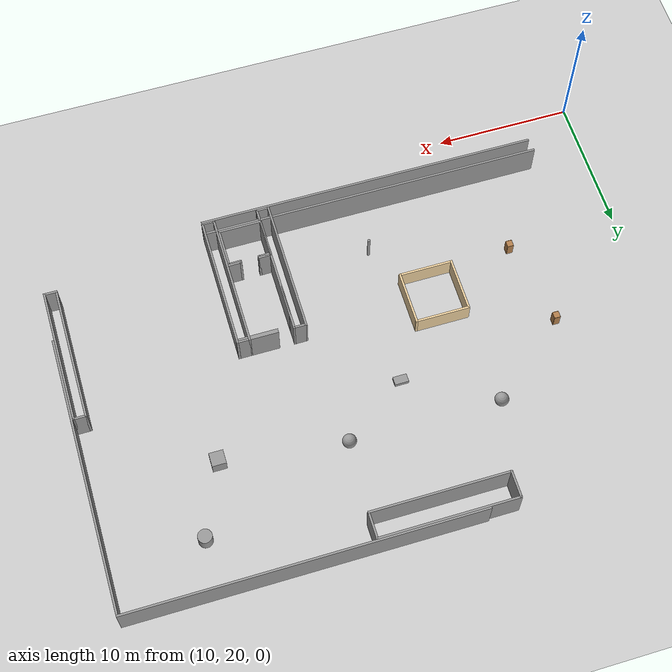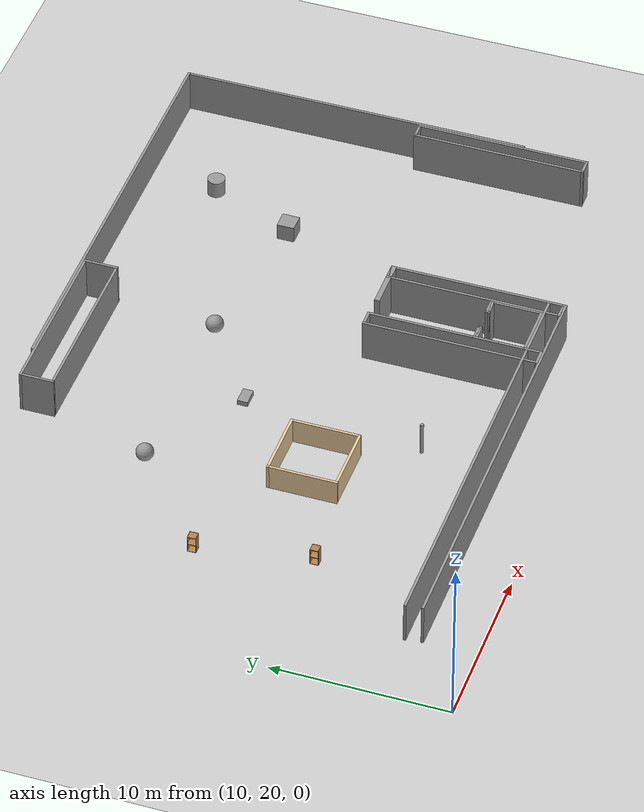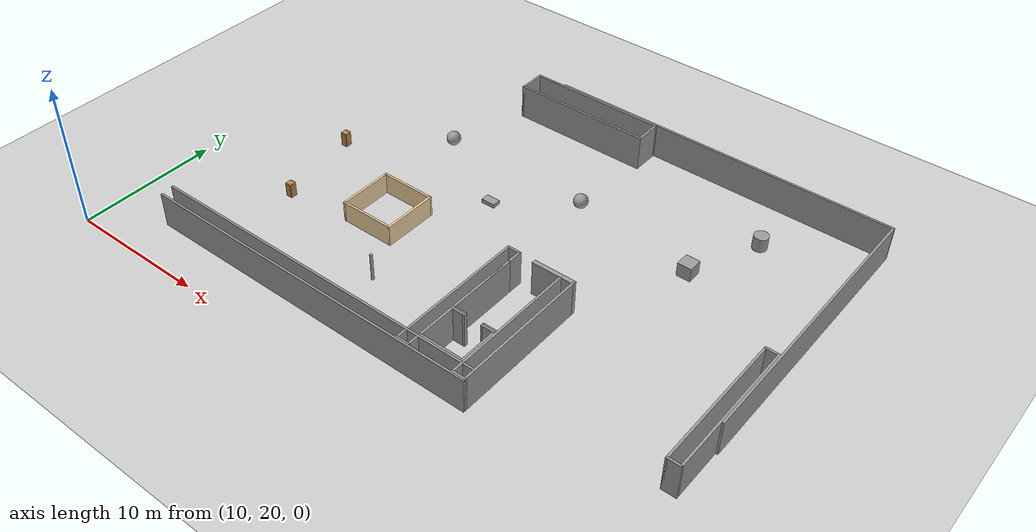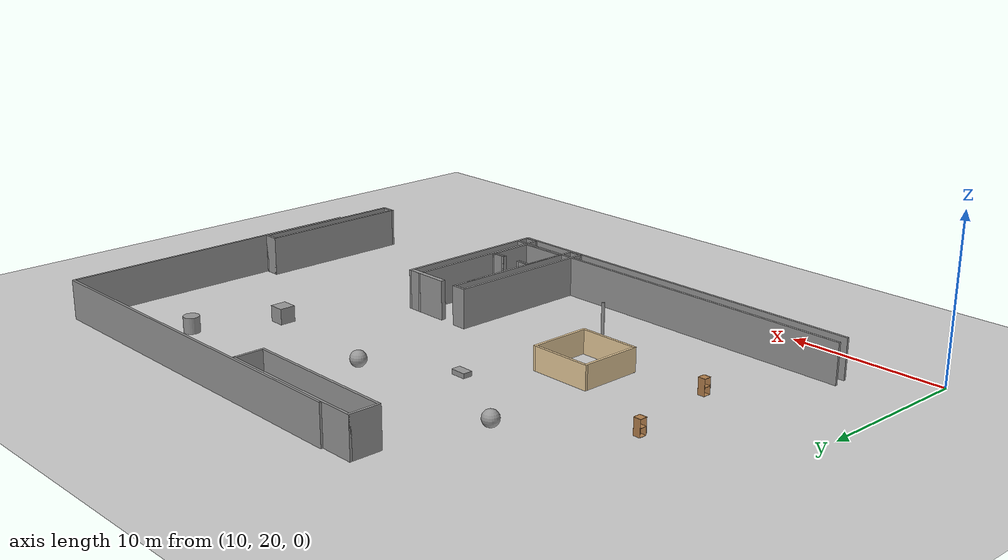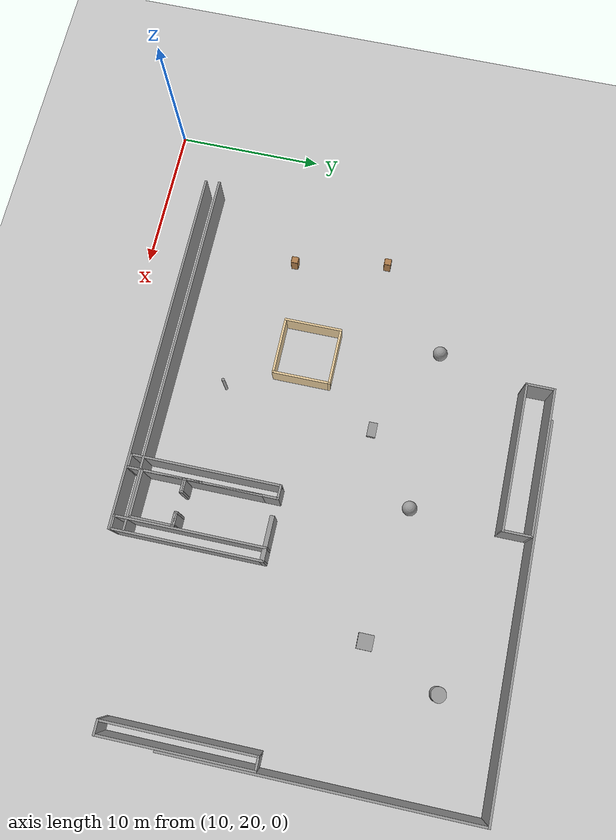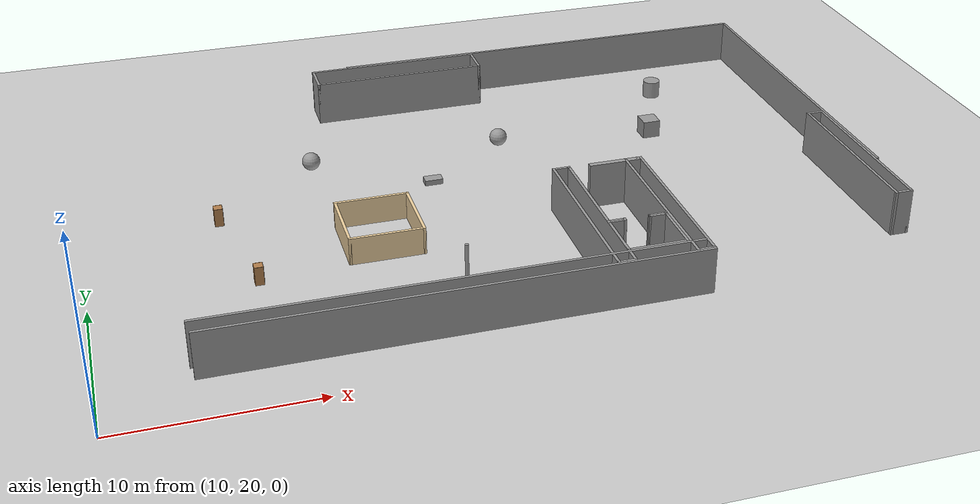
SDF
<sdf version="1.6">
 <world name="default">
  <model name="ground_plane">
   <static>1</static>
   <link name="link">
    <collision name="collision">
     <geometry><plane><normal>0 0 1</normal><size>105 105</size></plane></geometry>
     <surface>
      <contact><collide_bitmask>65535</collide_bitmask></contact>
      <friction><ode><mu>100</mu><mu2>50</mu2></ode></friction>
     </surface>
    </collision>
    <visual name="visual">
     <cast_shadows>0</cast_shadows>
     <geometry><plane><normal>0 0 1</normal><size>105 105</size></plane></geometry>
     <material>
      <script><uri>file://media/materials/scripts/gazebo.material</uri><name>Gazebo/Grey</name></script>
     </material>
    </visual>
   </link>
  </model>
  <model name="wall_25m_6">
   <pose>39.0043 49.3458 0 0 -0 0</pose>
   <link name="Wall_28">
    <collision name="Wall_28_Collision">
     <geometry><box><size>25 0.15 2.5</size></box></geometry>
     <pose>0 0 1.25 0 -0 0</pose>
    </collision>
    <visual name="Wall_28_Visual">
     <pose>0 0 1.25 0 -0 0</pose>
     <geometry><box><size>25 0.15 2.5</size></box></geometry>
     <material>
      <script><uri>file://media/materials/scripts/gazebo.material</uri><name>Gazebo/Grey</name></script>
      <ambient>1 1 1 1</ambient>
     </material>
     <meta><layer>0</layer></meta>
    </visual>
   </link>
   <static>1</static>
  </model>
  <model name="wall_v20m_6">
   <pose>51.4317 39.2751 0 0 -0 0</pose>
   <link name="Wall_35">
    <collision name="Wall_35_Collision">
     <geometry><box><size>20 0.15 2.5</size></box></geometry>
     <pose>0 0 1.25 0 -0 0</pose>
    </collision>
    <visual name="Wall_35_Visual">
     <pose>0 0 1.25 0 -0 0</pose>
     <geometry><box><size>20 0.15 2.5</size></box></geometry>
     <material>
      <script><uri>file://media/materials/scripts/gazebo.material</uri><name>Gazebo/Grey</name></script>
      <ambient>1 1 1 1</ambient>
     </material>
     <meta><layer>0</layer></meta>
    </visual>
    <pose>0 -0 0 0 -0 -1.5708</pose>
   </link>
   <static>1</static>
  </model>
  <model name="wall_25m_0">
   <pose>26.8412 23.0792 0 0 -0 0</pose>
   <link name="Wall_28">
    <collision name="Wall_28_Collision">
     <geometry><box><size>25 0.15 2.5</size></box></geometry>
     <pose>0 0 1.25 0 -0 0</pose>
    </collision>
    <visual name="Wall_28_Visual">
     <pose>0 0 1.25 0 -0 0</pose>
     <geometry><box><size>25 0.15 2.5</size></box></geometry>
     <material>
      <script><uri>file://media/materials/scripts/gazebo.material</uri><name>Gazebo/Grey</name></script>
      <ambient>1 1 1 1</ambient>
     </material>
     <meta><layer>0</layer></meta>
    </visual>
   </link>
   <static>1</static>
  </model>
  <model name="base10x1_1">
   <pose>38.8563 28.1195 0 0 -0 0</pose>
   <link name="Wall_15">
    <collision name="Wall_15_Collision">
     <geometry><box><size>10 0.15 2.5</size></box></geometry>
     <pose>0 0 1.25 0 -0 0</pose>
    </collision>
    <visual name="Wall_15_Visual">
     <pose>0 0 1.25 0 -0 0</pose>
     <geometry><box><size>10 0.15 2.5</size></box></geometry>
     <material>
      <script><uri>file://media/materials/scripts/gazebo.material</uri><name>Gazebo/Grey</name></script>
      <ambient>1 1 1 1</ambient>
     </material>
     <meta><layer>0</layer></meta>
    </visual>
    <pose>-0.425 0 0 0 -0 1.5708</pose>
   </link>
   <link name="Wall_16">
    <collision name="Wall_16_Collision">
     <geometry><box><size>1 0.15 2.5</size></box></geometry>
     <pose>0 0 1.25 0 -0 0</pose>
    </collision>
    <visual name="Wall_16_Visual">
     <pose>0 0 1.25 0 -0 0</pose>
     <geometry><box><size>1 0.15 2.5</size></box></geometry>
     <material>
      <script><uri>file://media/materials/scripts/gazebo.material</uri><name>Gazebo/Grey</name></script>
      <ambient>1 1 1 1</ambient>
     </material>
     <meta><layer>0</layer></meta>
    </visual>
    <pose>0 4.925 0 0 -0 0</pose>
   </link>
   <link name="Wall_17">
    <collision name="Wall_17_Collision">
     <geometry><box><size>10 0.15 2.5</size></box></geometry>
     <pose>0 0 1.25 0 -0 0</pose>
    </collision>
    <visual name="Wall_17_Visual">
     <pose>0 0 1.25 0 -0 0</pose>
     <geometry><box><size>10 0.15 2.5</size></box></geometry>
     <material>
      <script><uri>file://media/materials/scripts/gazebo.material</uri><name>Gazebo/Grey</name></script>
      <ambient>1 1 1 1</ambient>
     </material>
     <meta><layer>0</layer></meta>
    </visual>
    <pose>0.425 0 0 0 -0 -1.5708</pose>
   </link>
   <link name="Wall_18">
    <collision name="Wall_18_Collision">
     <geometry><box><size>1 0.15 2.5</size></box></geometry>
     <pose>0 0 1.25 0 -0 0</pose>
    </collision>
    <visual name="Wall_18_Visual">
     <pose>0 0 1.25 0 -0 0</pose>
     <geometry><box><size>1 0.15 2.5</size></box></geometry>
     <material>
      <script><uri>file://media/materials/scripts/gazebo.material</uri><name>Gazebo/Grey</name></script>
      <ambient>1 1 1 1</ambient>
     </material>
     <meta><layer>0</layer></meta>
    </visual>
    <pose>0 -4.925 0 0 -0 3.14159</pose>
   </link>
   <static>1</static>
  </model>
  <model name="wall_25m_2">
   <pose>26.7296 24.0129 0 0 -0 0</pose>
   <link name="Wall_28">
    <collision name="Wall_28_Collision">
     <geometry><box><size>25 0.15 2.5</size></box></geometry>
     <pose>0 0 1.25 0 -0 0</pose>
    </collision>
    <visual name="Wall_28_Visual">
     <pose>0 0 1.25 0 -0 0</pose>
     <geometry><box><size>25 0.15 2.5</size></box></geometry>
     <material>
      <script><uri>file://media/materials/scripts/gazebo.material</uri><name>Gazebo/Grey</name></script>
      <ambient>1 1 1 1</ambient>
     </material>
     <meta><layer>0</layer></meta>
    </visual>
   </link>
   <static>1</static>
  </model>
  <model name="box4x4x1.5">
   <pose>24.8277 32.6302 0 0 -0 0</pose>
   <link name="Wall_5">
    <collision name="Wall_5_Collision">
     <geometry><box><size>4 0.15 1.5</size></box></geometry>
     <pose>0 0 0.75 0 -0 0</pose>
    </collision>
    <visual name="Wall_5_Visual">
     <pose>0 0 0.75 0 -0 0</pose>
     <geometry><box><size>4 0.15 1.5</size></box></geometry>
     <material>
      <script><uri>file://media/materials/scripts/gazebo.material</uri><name>Gazebo/Grey</name></script>
      <ambient>0.921569 0.807843 0.615686 1</ambient>
     </material>
     <meta><layer>0</layer></meta>
    </visual>
    <pose>-1.925 -0 0 0 -0 -1.5708</pose>
   </link>
   <link name="Wall_6">
    <collision name="Wall_6_Collision">
     <geometry><box><size>4 0.15 1.5</size></box></geometry>
     <pose>0 0 0.75 0 -0 0</pose>
    </collision>
    <visual name="Wall_6_Visual">
     <pose>0 0 0.75 0 -0 0</pose>
     <geometry><box><size>4 0.15 1.5</size></box></geometry>
     <material>
      <script><uri>file://media/materials/scripts/gazebo.material</uri><name>Gazebo/Grey</name></script>
      <ambient>0.921569 0.807843 0.615686 1</ambient>
     </material>
     <meta><layer>0</layer></meta>
    </visual>
    <pose>0 -1.925 0 0 -0 0</pose>
   </link>
   <link name="Wall_7">
    <collision name="Wall_7_Collision">
     <geometry><box><size>4 0.15 1.5</size></box></geometry>
     <pose>0 0 0.75 0 -0 0</pose>
    </collision>
    <visual name="Wall_7_Visual">
     <pose>0 0 0.75 0 -0 0</pose>
     <geometry><box><size>4 0.15 1.5</size></box></geometry>
     <material>
      <script><uri>file://media/materials/scripts/gazebo.material</uri><name>Gazebo/Grey</name></script>
      <ambient>0.921569 0.807843 0.615686 1</ambient>
     </material>
     <meta><layer>0</layer></meta>
    </visual>
    <pose>1.925 -0 0 0 -0 1.5708</pose>
   </link>
   <link name="Wall_8">
    <collision name="Wall_8_Collision">
     <geometry><box><size>4 0.15 1.5</size></box></geometry>
     <pose>0 0 0.75 0 -0 0</pose>
    </collision>
    <visual name="Wall_8_Visual">
     <pose>0 0 0.75 0 -0 0</pose>
     <geometry><box><size>4 0.15 1.5</size></box></geometry>
     <material>
      <script><uri>file://media/materials/scripts/gazebo.material</uri><name>Gazebo/Grey</name></script>
      <ambient>0.921569 0.807843 0.615686 1</ambient>
     </material>
     <meta><layer>0</layer></meta>
    </visual>
    <pose>0 1.925 0 0 -0 3.14159</pose>
   </link>
   <static>1</static>
  </model>
  <model name="base2x10">
   <pose>29.3485 48.2822 0 0 -0 0</pose>
   <link name="Wall_10">
    <collision name="Wall_10_Collision">
     <geometry><box><size>2 0.15 2.5</size></box></geometry>
     <pose>0 0 1.25 0 -0 0</pose>
    </collision>
    <visual name="Wall_10_Visual">
     <pose>0 0 1.25 0 -0 0</pose>
     <geometry><box><size>2 0.15 2.5</size></box></geometry>
     <material>
      <script><uri>file://media/materials/scripts/gazebo.material</uri><name>Gazebo/Grey</name></script>
      <ambient>1 1 1 1</ambient>
     </material>
     <meta><layer>0</layer></meta>
    </visual>
    <pose>-4.925 0 0 0 -0 -1.5708</pose>
   </link>
   <link name="Wall_11">
    <collision name="Wall_11_Collision">
     <geometry><box><size>10 0.15 2.5</size></box></geometry>
     <pose>0 0 1.25 0 -0 0</pose>
    </collision>
    <visual name="Wall_11_Visual">
     <pose>0 0 1.25 0 -0 0</pose>
     <geometry><box><size>10 0.15 2.5</size></box></geometry>
     <material>
      <script><uri>file://media/materials/scripts/gazebo.material</uri><name>Gazebo/Grey</name></script>
      <ambient>1 1 1 1</ambient>
     </material>
     <meta><layer>0</layer></meta>
    </visual>
    <pose>0 -0.925 0 0 -0 0</pose>
   </link>
   <link name="Wall_12">
    <collision name="Wall_12_Collision">
     <geometry><box><size>2 0.15 2.5</size></box></geometry>
     <pose>0 0 1.25 0 -0 0</pose>
    </collision>
    <visual name="Wall_12_Visual">
     <pose>0 0 1.25 0 -0 0</pose>
     <geometry><box><size>2 0.15 2.5</size></box></geometry>
     <material>
      <script><uri>file://media/materials/scripts/gazebo.material</uri><name>Gazebo/Grey</name></script>
      <ambient>1 1 1 1</ambient>
     </material>
     <meta><layer>0</layer></meta>
    </visual>
    <pose>4.925 0 0 0 -0 1.5708</pose>
   </link>
   <link name="Wall_13">
    <collision name="Wall_13_Collision">
     <geometry><box><size>10 0.15 2.5</size></box></geometry>
     <pose>0 0 1.25 0 -0 0</pose>
    </collision>
    <visual name="Wall_13_Visual">
     <pose>0 0 1.25 0 -0 0</pose>
     <geometry><box><size>10 0.15 2.5</size></box></geometry>
     <material>
      <script><uri>file://media/materials/scripts/gazebo.material</uri><name>Gazebo/Grey</name></script>
      <ambient>1 1 1 1</ambient>
     </material>
     <meta><layer>0</layer></meta>
    </visual>
    <pose>0 0.925 0 0 -0 3.14159</pose>
   </link>
   <static>1</static>
  </model>
  <model name="base10x1_3">
   <pose>50.8665 30.488 0 0 -0 0</pose>
   <link name="Wall_15">
    <collision name="Wall_15_Collision">
     <geometry><box><size>10 0.15 2.5</size></box></geometry>
     <pose>0 0 1.25 0 -0 0</pose>
    </collision>
    <visual name="Wall_15_Visual">
     <pose>0 0 1.25 0 -0 0</pose>
     <geometry><box><size>10 0.15 2.5</size></box></geometry>
     <material>
      <script><uri>file://media/materials/scripts/gazebo.material</uri><name>Gazebo/Grey</name></script>
      <ambient>1 1 1 1</ambient>
     </material>
     <meta><layer>0</layer></meta>
    </visual>
    <pose>-0.425 0 0 0 -0 1.5708</pose>
   </link>
   <link name="Wall_16">
    <collision name="Wall_16_Collision">
     <geometry><box><size>1 0.15 2.5</size></box></geometry>
     <pose>0 0 1.25 0 -0 0</pose>
    </collision>
    <visual name="Wall_16_Visual">
     <pose>0 0 1.25 0 -0 0</pose>
     <geometry><box><size>1 0.15 2.5</size></box></geometry>
     <material>
      <script><uri>file://media/materials/scripts/gazebo.material</uri><name>Gazebo/Grey</name></script>
      <ambient>1 1 1 1</ambient>
     </material>
     <meta><layer>0</layer></meta>
    </visual>
    <pose>0 4.925 0 0 -0 0</pose>
   </link>
   <link name="Wall_17">
    <collision name="Wall_17_Collision">
     <geometry><box><size>10 0.15 2.5</size></box></geometry>
     <pose>0 0 1.25 0 -0 0</pose>
    </collision>
    <visual name="Wall_17_Visual">
     <pose>0 0 1.25 0 -0 0</pose>
     <geometry><box><size>10 0.15 2.5</size></box></geometry>
     <material>
      <script><uri>file://media/materials/scripts/gazebo.material</uri><name>Gazebo/Grey</name></script>
      <ambient>1 1 1 1</ambient>
     </material>
     <meta><layer>0</layer></meta>
    </visual>
    <pose>0.425 0 0 0 -0 -1.5708</pose>
   </link>
   <link name="Wall_18">
    <collision name="Wall_18_Collision">
     <geometry><box><size>1 0.15 2.5</size></box></geometry>
     <pose>0 0 1.25 0 -0 0</pose>
    </collision>
    <visual name="Wall_18_Visual">
     <pose>0 0 1.25 0 -0 0</pose>
     <geometry><box><size>1 0.15 2.5</size></box></geometry>
     <material>
      <script><uri>file://media/materials/scripts/gazebo.material</uri><name>Gazebo/Grey</name></script>
      <ambient>1 1 1 1</ambient>
     </material>
     <meta><layer>0</layer></meta>
    </visual>
    <pose>0 -4.925 0 0 -0 3.14159</pose>
   </link>
   <static>1</static>
  </model>
  <model name="elevator_120cm_3m_0">
   <pose>36.7667 25.5851 0 0 -0 0</pose>
   <link name="Wall_40">
    <collision name="Wall_40_Collision">
     <geometry><box><size>1 0.15 2.5</size></box></geometry>
     <pose>0 0 1.25 0 -0 0</pose>
    </collision>
    <visual name="Wall_40_Visual">
     <pose>0 0 1.25 0 -0 0</pose>
     <geometry><box><size>1 0.15 2.5</size></box></geometry>
     <material>
      <script><uri>file://media/materials/scripts/gazebo.material</uri><name>Gazebo/Grey</name></script>
      <ambient>1 1 1 1</ambient>
     </material>
     <meta><layer>0</layer></meta>
    </visual>
    <pose>1.1 1.425 0 0 -0 0</pose>
   </link>
   <link name="Wall_41">
    <collision name="Wall_41_Collision">
     <geometry><box><size>3 0.15 2.5</size></box></geometry>
     <pose>0 0 1.25 0 -0 0</pose>
    </collision>
    <visual name="Wall_41_Visual">
     <pose>0 0 1.25 0 -0 0</pose>
     <geometry><box><size>3 0.15 2.5</size></box></geometry>
     <material>
      <script><uri>file://media/materials/scripts/gazebo.material</uri><name>Gazebo/Grey</name></script>
      <ambient>1 1 1 1</ambient>
     </material>
     <meta><layer>0</layer></meta>
    </visual>
    <pose>1.525 0 0 0 -0 -1.5708</pose>
   </link>
   <link name="Wall_43">
    <collision name="Wall_43_Collision">
     <geometry><box><size>1 0.15 2.5</size></box></geometry>
     <pose>0 0 1.25 0 -0 0</pose>
    </collision>
    <visual name="Wall_43_Visual">
     <pose>0 0 1.25 0 -0 0</pose>
     <geometry><box><size>1 0.15 2.5</size></box></geometry>
     <material>
      <script><uri>file://media/materials/scripts/gazebo.material</uri><name>Gazebo/Grey</name></script>
      <ambient>1 1 1 1</ambient>
     </material>
     <meta><layer>0</layer></meta>
    </visual>
    <pose>-1.1 1.425 0 0 -0 3.14159</pose>
   </link>
   <link name="Wall_44">
    <collision name="Wall_44_Collision">
     <geometry><box><size>3 0.15 2.5</size></box></geometry>
     <pose>0 0 1.25 0 -0 0</pose>
    </collision>
    <visual name="Wall_44_Visual">
     <pose>0 0 1.25 0 -0 0</pose>
     <geometry><box><size>3 0.15 2.5</size></box></geometry>
     <material>
      <script><uri>file://media/materials/scripts/gazebo.material</uri><name>Gazebo/Grey</name></script>
      <ambient>1 1 1 1</ambient>
     </material>
     <meta><layer>0</layer></meta>
    </visual>
    <pose>-1.525 0 0 0 -0 -1.5708</pose>
   </link>
   <link name="Wall_45">
    <collision name="Wall_45_Collision">
     <geometry><box><size>3.2 0.15 2.5</size></box></geometry>
     <pose>0 0 1.25 0 -0 0</pose>
    </collision>
    <visual name="Wall_45_Visual">
     <pose>0 0 1.25 0 -0 0</pose>
     <geometry><box><size>3.2 0.15 2.5</size></box></geometry>
     <material>
      <script><uri>file://media/materials/scripts/gazebo.material</uri><name>Gazebo/Grey</name></script>
      <ambient>1 1 1 1</ambient>
     </material>
     <meta><layer>0</layer></meta>
    </visual>
    <pose>0 -1.425 0 0 -0 0</pose>
   </link>
   <link name="Wall_47">
    <collision name="Wall_47_Collision">
     <geometry><box><size>0.25 0.15 2.5</size></box></geometry>
     <pose>0 0 1.25 0 -0 0</pose>
    </collision>
    <visual name="Wall_47_Visual">
     <pose>0 0 1.25 0 -0 0</pose>
     <geometry><box><size>0.25 0.15 2.5</size></box></geometry>
     <material>
      <script><uri>file://media/materials/scripts/gazebo.material</uri><name>Gazebo/Grey</name></script>
      <ambient>1 1 1 1</ambient>
     </material>
     <meta><layer>0</layer></meta>
    </visual>
    <pose>-0.675 1.375 0 0 -0 -1.5708</pose>
   </link>
   <link name="Wall_49">
    <collision name="Wall_49_Collision">
     <geometry><box><size>0.25 0.15 2.5</size></box></geometry>
     <pose>0 0 1.25 0 -0 0</pose>
    </collision>
    <visual name="Wall_49_Visual">
     <pose>0 0 1.25 0 -0 0</pose>
     <geometry><box><size>0.25 0.15 2.5</size></box></geometry>
     <material>
      <script><uri>file://media/materials/scripts/gazebo.material</uri><name>Gazebo/Grey</name></script>
      <ambient>1 1 1 1</ambient>
     </material>
     <meta><layer>0</layer></meta>
    </visual>
    <pose>-1.525 1.375 0 0 -0 -1.5708</pose>
   </link>
   <link name="Wall_50">
    <collision name="Wall_50_Collision">
     <geometry><box><size>1 0.15 2.5</size></box></geometry>
     <pose>0 0 1.25 0 -0 0</pose>
    </collision>
    <visual name="Wall_50_Visual">
     <pose>0 0 1.25 0 -0 0</pose>
     <geometry><box><size>1 0.15 2.5</size></box></geometry>
     <material>
      <script><uri>file://media/materials/scripts/gazebo.material</uri><name>Gazebo/Grey</name></script>
      <ambient>1 1 1 1</ambient>
     </material>
     <meta><layer>0</layer></meta>
    </visual>
    <pose>-1.1 1.325 0 0 -0 0</pose>
   </link>
   <link name="Wall_52">
    <collision name="Wall_52_Collision">
     <geometry><box><size>0.25 0.15 2.5</size></box></geometry>
     <pose>0 0 1.25 0 -0 0</pose>
    </collision>
    <visual name="Wall_52_Visual">
     <pose>0 0 1.25 0 -0 0</pose>
     <geometry><box><size>0.25 0.15 2.5</size></box></geometry>
     <material>
      <script><uri>file://media/materials/scripts/gazebo.material</uri><name>Gazebo/Grey</name></script>
      <ambient>1 1 1 1</ambient>
     </material>
     <meta><layer>0</layer></meta>
    </visual>
    <pose>0.675 1.375 0 0 -0 -1.5708</pose>
   </link>
   <link name="Wall_54">
    <collision name="Wall_54_Collision">
     <geometry><box><size>0.25 0.15 2.5</size></box></geometry>
     <pose>0 0 1.25 0 -0 0</pose>
    </collision>
    <visual name="Wall_54_Visual">
     <pose>0 0 1.25 0 -0 0</pose>
     <geometry><box><size>0.25 0.15 2.5</size></box></geometry>
     <material>
      <script><uri>file://media/materials/scripts/gazebo.material</uri><name>Gazebo/Grey</name></script>
      <ambient>1 1 1 1</ambient>
     </material>
     <meta><layer>0</layer></meta>
    </visual>
    <pose>1.525 1.375 0 0 -0 -1.5708</pose>
   </link>
   <link name="Wall_55">
    <collision name="Wall_55_Collision">
     <geometry><box><size>1 0.15 2.5</size></box></geometry>
     <pose>0 0 1.25 0 -0 0</pose>
    </collision>
    <visual name="Wall_55_Visual">
     <pose>0 0 1.25 0 -0 0</pose>
     <geometry><box><size>1 0.15 2.5</size></box></geometry>
     <material>
      <script><uri>file://media/materials/scripts/gazebo.material</uri><name>Gazebo/Grey</name></script>
      <ambient>1 1 1 1</ambient>
     </material>
     <meta><layer>0</layer></meta>
    </visual>
    <pose>1.1 1.325 0 0 -0 3.14159</pose>
   </link>
   <static>1</static>
  </model>
  <model name="wall_5m">
   <pose>35.2418 29.5688 0 0 -0 0</pose>
   <link name="Wall_30">
    <collision name="Wall_30_Collision">
     <geometry><box><size>5 0.15 2.5</size></box></geometry>
     <pose>0 0 1.25 0 -0 0</pose>
    </collision>
    <visual name="Wall_30_Visual">
     <pose>0 0 1.25 0 -0 0</pose>
     <geometry><box><size>5 0.15 2.5</size></box></geometry>
     <material>
      <script><uri>file://media/materials/scripts/gazebo.material</uri><name>Gazebo/Grey</name></script>
      <ambient>1 1 1 1</ambient>
     </material>
     <meta><layer>0</layer></meta>
    </visual>
    <pose>0 0 0 0 -0 -1.5708</pose>
   </link>
   <static>1</static>
  </model>
  <model name="base10x1_6">
   <pose>34.8115 28.1334 0 0 -0 0</pose>
   <link name="Wall_15">
    <collision name="Wall_15_Collision">
     <geometry><box><size>10 0.15 2.5</size></box></geometry>
     <pose>0 0 1.25 0 -0 0</pose>
    </collision>
    <visual name="Wall_15_Visual">
     <pose>0 0 1.25 0 -0 0</pose>
     <geometry><box><size>10 0.15 2.5</size></box></geometry>
     <material>
      <script><uri>file://media/materials/scripts/gazebo.material</uri><name>Gazebo/Grey</name></script>
      <ambient>1 1 1 1</ambient>
     </material>
     <meta><layer>0</layer></meta>
    </visual>
    <pose>-0.425 0 0 0 -0 1.5708</pose>
   </link>
   <link name="Wall_16">
    <collision name="Wall_16_Collision">
     <geometry><box><size>1 0.15 2.5</size></box></geometry>
     <pose>0 0 1.25 0 -0 0</pose>
    </collision>
    <visual name="Wall_16_Visual">
     <pose>0 0 1.25 0 -0 0</pose>
     <geometry><box><size>1 0.15 2.5</size></box></geometry>
     <material>
      <script><uri>file://media/materials/scripts/gazebo.material</uri><name>Gazebo/Grey</name></script>
      <ambient>1 1 1 1</ambient>
     </material>
     <meta><layer>0</layer></meta>
    </visual>
    <pose>0 4.925 0 0 -0 0</pose>
   </link>
   <link name="Wall_17">
    <collision name="Wall_17_Collision">
     <geometry><box><size>10 0.15 2.5</size></box></geometry>
     <pose>0 0 1.25 0 -0 0</pose>
    </collision>
    <visual name="Wall_17_Visual">
     <pose>0 0 1.25 0 -0 0</pose>
     <geometry><box><size>10 0.15 2.5</size></box></geometry>
     <material>
      <script><uri>file://media/materials/scripts/gazebo.material</uri><name>Gazebo/Grey</name></script>
      <ambient>1 1 1 1</ambient>
     </material>
     <meta><layer>0</layer></meta>
    </visual>
    <pose>0.425 0 0 0 -0 -1.5708</pose>
   </link>
   <link name="Wall_18">
    <collision name="Wall_18_Collision">
     <geometry><box><size>1 0.15 2.5</size></box></geometry>
     <pose>0 0 1.25 0 -0 0</pose>
    </collision>
    <visual name="Wall_18_Visual">
     <pose>0 0 1.25 0 -0 0</pose>
     <geometry><box><size>1 0.15 2.5</size></box></geometry>
     <material>
      <script><uri>file://media/materials/scripts/gazebo.material</uri><name>Gazebo/Grey</name></script>
      <ambient>1 1 1 1</ambient>
     </material>
     <meta><layer>0</layer></meta>
    </visual>
    <pose>0 -4.925 0 0 -0 3.14159</pose>
   </link>
   <static>1</static>
  </model>
  <model name="wall_3mx30cm">
   <pose>37.8574 32.9691 0 0 -0 0</pose>
   <link name="Wall_0">
    <collision name="Wall_0_Collision">
     <geometry><box><size>3 0.3 2.5</size></box></geometry>
     <pose>0 0 1.25 0 -0 0</pose>
    </collision>
    <visual name="Wall_0_Visual">
     <pose>0 0 1.25 0 -0 0</pose>
     <geometry><box><size>3 0.3 2.5</size></box></geometry>
     <material>
      <script><uri>file://media/materials/scripts/gazebo.material</uri><name>Gazebo/Grey</name></script>
      <ambient>1 1 1 1</ambient>
     </material>
     <meta><layer>0</layer></meta>
    </visual>
   </link>
   <static>1</static>
  </model>
  <model name="cabinet_2_clone_clone">
   <static>1</static>
   <link name="cabinet_bottom_plate">
    <inertial>
     <pose>0 0 -1 0 -0 0</pose>
     <inertia><ixx>2.05</ixx><ixy>0</ixy><ixz>0</ixz><iyy>2.05</iyy><iyz>0</iyz><izz>2.05</izz></inertia>
     <mass>25</mass>
    </inertial>
    <collision name="cabinet_bottom_plate_geom">
     <pose>0 0 0.01 0 -0 0</pose>
     <geometry><box><size>0.45 0.45 0.02</size></box></geometry>
    </collision>
    <visual name="cabinet_bottom_plate_geom_visual">
     <pose>0 0 0.01 0 -0 0</pose>
     <geometry><box><size>0.45 0.45 0.02</size></box></geometry>
     <material>
      <script><uri>file://media/materials/scripts/gazebo.material</uri><name>Gazebo/Wood</name></script>
     </material>
    </visual>
    <collision name="cabinet_bottom_plate_geom_cabinet_back_plate">
     <pose>0.235 0 0.51 0 -0 0</pose>
     <geometry><box><size>0.02 0.45 1.02</size></box></geometry>
    </collision>
    <visual name="cabinet_bottom_plate_geom_cabinet_back_plate_visual">
     <pose>0.235 0 0.51 0 -0 0</pose>
     <geometry><box><size>0.02 0.45 1.02</size></box></geometry>
     <material>
      <script><uri>file://media/materials/scripts/gazebo.material</uri><name>Gazebo/Wood</name></script>
     </material>
    </visual>
    <collision name="cabinet_bottom_plate_geom_cabinet_left_plate">
     <pose>0 0.235 0.51 0 -0 0</pose>
     <geometry><box><size>0.45 0.02 1.02</size></box></geometry>
    </collision>
    <visual name="cabinet_bottom_plate_geom_cabinet_left_plate_visual">
     <pose>0 0.235 0.51 0 -0 0</pose>
     <geometry><box><size>0.45 0.02 1.02</size></box></geometry>
     <material>
      <script><uri>file://media/materials/scripts/gazebo.material</uri><name>Gazebo/Wood</name></script>
     </material>
    </visual>
    <collision name="cabinet_bottom_plate_geom_cabinet_middle_plate">
     <pose>0 0 0.51 0 -0 0</pose>
     <geometry><box><size>0.45 0.45 0.02</size></box></geometry>
    </collision>
    <visual name="cabinet_bottom_plate_geom_cabinet_middle_plate_visual">
     <pose>0 0 0.51 0 -0 0</pose>
     <geometry><box><size>0.45 0.45 0.02</size></box></geometry>
     <material>
      <script><uri>file://media/materials/scripts/gazebo.material</uri><name>Gazebo/Wood</name></script>
     </material>
    </visual>
    <collision name="cabinet_bottom_plate_geom_cabinet_right_plate">
     <pose>0 -0.235 0.51 0 -0 0</pose>
     <geometry><box><size>0.45 0.02 1.02</size></box></geometry>
    </collision>
    <visual name="cabinet_bottom_plate_geom_cabinet_right_plate_visual">
     <pose>0 -0.235 0.51 0 -0 0</pose>
     <geometry><box><size>0.45 0.02 1.02</size></box></geometry>
     <material>
      <script><uri>file://media/materials/scripts/gazebo.material</uri><name>Gazebo/Wood</name></script>
     </material>
    </visual>
    <collision name="cabinet_bottom_plate_geom_cabinet_top_plate">
     <pose>0 0 1.01 0 -0 0</pose>
     <geometry><box><size>0.45 0.45 0.02</size></box></geometry>
    </collision>
    <visual name="cabinet_bottom_plate_geom_cabinet_top_plate_visual">
     <pose>0 0 1.01 0 -0 0</pose>
     <geometry><box><size>0.45 0.45 0.02</size></box></geometry>
     <material>
      <script><uri>file://media/materials/scripts/gazebo.material</uri><name>Gazebo/Wood</name></script>
     </material>
    </visual>
   </link>
   <pose>17.0536 36.6947 0 0 -0 0</pose>
  </model>
  <model name="cabinet_2_clone_clone_0">
   <static>1</static>
   <link name="cabinet_bottom_plate">
    <inertial>
     <pose>0 0 -1 0 -0 0</pose>
     <inertia><ixx>2.05</ixx><ixy>0</ixy><ixz>0</ixz><iyy>2.05</iyy><iyz>0</iyz><izz>2.05</izz></inertia>
     <mass>25</mass>
    </inertial>
    <collision name="cabinet_bottom_plate_geom">
     <pose>0 0 0.01 0 -0 0</pose>
     <geometry><box><size>0.45 0.45 0.02</size></box></geometry>
    </collision>
    <visual name="cabinet_bottom_plate_geom_visual">
     <pose>0 0 0.01 0 -0 0</pose>
     <geometry><box><size>0.45 0.45 0.02</size></box></geometry>
     <material>
      <script><uri>file://media/materials/scripts/gazebo.material</uri><name>Gazebo/Wood</name></script>
     </material>
    </visual>
    <collision name="cabinet_bottom_plate_geom_cabinet_back_plate">
     <pose>0.235 0 0.51 0 -0 0</pose>
     <geometry><box><size>0.02 0.45 1.02</size></box></geometry>
    </collision>
    <visual name="cabinet_bottom_plate_geom_cabinet_back_plate_visual">
     <pose>0.235 0 0.51 0 -0 0</pose>
     <geometry><box><size>0.02 0.45 1.02</size></box></geometry>
     <material>
      <script><uri>file://media/materials/scripts/gazebo.material</uri><name>Gazebo/Wood</name></script>
     </material>
    </visual>
    <collision name="cabinet_bottom_plate_geom_cabinet_left_plate">
     <pose>0 0.235 0.51 0 -0 0</pose>
     <geometry><box><size>0.45 0.02 1.02</size></box></geometry>
    </collision>
    <visual name="cabinet_bottom_plate_geom_cabinet_left_plate_visual">
     <pose>0 0.235 0.51 0 -0 0</pose>
     <geometry><box><size>0.45 0.02 1.02</size></box></geometry>
     <material>
      <script><uri>file://media/materials/scripts/gazebo.material</uri><name>Gazebo/Wood</name></script>
     </material>
    </visual>
    <collision name="cabinet_bottom_plate_geom_cabinet_middle_plate">
     <pose>0 0 0.51 0 -0 0</pose>
     <geometry><box><size>0.45 0.45 0.02</size></box></geometry>
    </collision>
    <visual name="cabinet_bottom_plate_geom_cabinet_middle_plate_visual">
     <pose>0 0 0.51 0 -0 0</pose>
     <geometry><box><size>0.45 0.45 0.02</size></box></geometry>
     <material>
      <script><uri>file://media/materials/scripts/gazebo.material</uri><name>Gazebo/Wood</name></script>
     </material>
    </visual>
    <collision name="cabinet_bottom_plate_geom_cabinet_right_plate">
     <pose>0 -0.235 0.51 0 -0 0</pose>
     <geometry><box><size>0.45 0.02 1.02</size></box></geometry>
    </collision>
    <visual name="cabinet_bottom_plate_geom_cabinet_right_plate_visual">
     <pose>0 -0.235 0.51 0 -0 0</pose>
     <geometry><box><size>0.45 0.02 1.02</size></box></geometry>
     <material>
      <script><uri>file://media/materials/scripts/gazebo.material</uri><name>Gazebo/Wood</name></script>
     </material>
    </visual>
    <collision name="cabinet_bottom_plate_geom_cabinet_top_plate">
     <pose>0 0 1.01 0 -0 0</pose>
     <geometry><box><size>0.45 0.45 0.02</size></box></geometry>
    </collision>
    <visual name="cabinet_bottom_plate_geom_cabinet_top_plate_visual">
     <pose>0 0 1.01 0 -0 0</pose>
     <geometry><box><size>0.45 0.45 0.02</size></box></geometry>
     <material>
      <script><uri>file://media/materials/scripts/gazebo.material</uri><name>Gazebo/Wood</name></script>
     </material>
    </visual>
   </link>
   <pose>18.2565 30.2809 0 0 -0 0</pose>
  </model>
  <model name="unit_sphere_clone_clone">
   <pose>22.8134 41.5187 0.5 0 -0 0</pose>
   <link name="link">
    <inertial>
     <mass>1</mass>
     <inertia><ixx>0.1</ixx><ixy>0</ixy><ixz>0</ixz><iyy>0.1</iyy><iyz>0</iyz><izz>0.1</izz></inertia>
    </inertial>
    <collision name="collision"><geometry><sphere><radius>0.5</radius></sphere></geometry></collision>
    <visual name="visual">
     <geometry><sphere><radius>0.5</radius></sphere></geometry>
     <material>
      <script><name>Gazebo/Grey</name><uri>file://media/materials/scripts/gazebo.material</uri></script>
     </material>
    </visual>
   </link>
  </model>
  <model name="unit_sphere_clone_clone_0">
   <pose>33.7765 41.4665 0.5 0 -0 0</pose>
   <link name="link">
    <inertial>
     <mass>1</mass>
     <inertia><ixx>0.1</ixx><ixy>0</ixy><ixz>0</ixz><iyy>0.1</iyy><iyz>0</iyz><izz>0.1</izz></inertia>
    </inertial>
    <collision name="collision"><geometry><sphere><radius>0.5</radius></sphere></geometry></collision>
    <visual name="visual">
     <geometry><sphere><radius>0.5</radius></sphere></geometry>
     <material>
      <script><name>Gazebo/Grey</name><uri>file://media/materials/scripts/gazebo.material</uri></script>
     </material>
    </visual>
   </link>
  </model>
  <model name="unit_box_100x60x30cm_0_clone_10_clone">
   <link name="link">
    <inertial>
     <mass>1</mass>
     <inertia>
      <ixx>0.166667</ixx>
      <ixy>0</ixy>
      <ixz>0</ixz>
      <iyy>0.166667</iyy>
      <iyz>0</iyz>
      <izz>0.166667</izz>
     </inertia>
    </inertial>
    <visual name="visual">
     <geometry><box><size>1 0.6 0.3</size></box></geometry>
     <material>
      <script><name>Gazebo/Grey</name><uri>file://media/materials/scripts/gazebo.material</uri></script>
      <shader type="vertex"><normal_map>__default__</normal_map></shader>
      <ambient>0.3 0.3 0.3 1</ambient>
      <diffuse>0.7 0.7 0.7 1</diffuse>
      <specular>0.01 0.01 0.01 1</specular>
      <emissive>0 0 0 1</emissive>
     </material>
    </visual>
    <collision name="collision">
     <geometry><box><size>1 0.6 0.3</size></box></geometry>
     <surface>
      <friction>
       <ode><mu>1</mu><mu2>1</mu2><fdir1>0 0 0</fdir1><slip1>0</slip1><slip2>0</slip2></ode>
       <torsional>
        <coefficient>1</coefficient>
        <patch_radius>0</patch_radius>
        <surface_radius>0</surface_radius>
        <use_patch_radius>1</use_patch_radius>
        <ode><slip>0</slip></ode>
       </torsional>
      </friction>
      <bounce><restitution_coefficient>0</restitution_coefficient><threshold>1e+06</threshold></bounce>
      <contact>
       <collide_without_contact>0</collide_without_contact>
       <collide_without_contact_bitmask>1</collide_without_contact_bitmask>
       <collide_bitmask>1</collide_bitmask>
       <ode>
        <soft_cfm>0</soft_cfm>
        <soft_erp>0.2</soft_erp>
        <kp>1e+13</kp>
        <kd>1</kd>
        <max_vel>0.01</max_vel>
        <min_depth>0</min_depth>
       </ode>
       <bullet>
        <split_impulse>1</split_impulse>
        <split_impulse_penetration_threshold>-0.01</split_impulse_penetration_threshold>
        <soft_cfm>0</soft_cfm>
        <soft_erp>0.2</soft_erp>
        <kp>1e+13</kp>
        <kd>1</kd>
       </bullet>
      </contact>
     </surface>
    </collision>
   </link>
   <static>0</static>
   <pose>29 38 0.15 0 -0 0</pose>
  </model>
  <model name="unit_box_2_clone_3_clone">
   <pose>42.6993 40.3008 0.499902 0.000196 0 -2e-06</pose>
   <link name="link">
    <inertial>
     <mass>1</mass>
     <inertia>
      <ixx>0.166667</ixx>
      <ixy>0</ixy>
      <ixz>0</ixz>
      <iyy>0.166667</iyy>
      <iyz>0</iyz>
      <izz>0.166667</izz>
     </inertia>
    </inertial>
    <collision name="collision"><geometry><box><size>1 1 1</size></box></geometry></collision>
    <visual name="visual">
     <geometry><box><size>1 1 1</size></box></geometry>
     <material>
      <script><name>Gazebo/Grey</name><uri>file://media/materials/scripts/gazebo.material</uri></script>
     </material>
    </visual>
   </link>
  </model>
  <model name="unit_cylinder_clone_clone">
   <pose>44.8568 45.35 0.499805 -0 -0 -0</pose>
   <link name="link">
    <inertial>
     <mass>1</mass>
     <inertia><ixx>0.145833</ixx><ixy>0</ixy><ixz>0</ixz><iyy>0.145833</iyy><iyz>0</iyz><izz>0.125</izz></inertia>
    </inertial>
    <collision name="collision">
     <geometry><cylinder><radius>0.5</radius><length>1</length></cylinder></geometry>
    </collision>
    <visual name="visual">
     <geometry><cylinder><radius>0.5</radius><length>1</length></cylinder></geometry>
     <material>
      <script><name>Gazebo/Grey</name><uri>file://media/materials/scripts/gazebo.material</uri></script>
     </material>
    </visual>
   </link>
  </model>
  <model name="unit_cylinder_r0.1_l2m_0_clone_6">
   <link name="link">
    <inertial>
     <mass>1</mass>
     <inertia><ixx>0.145833</ixx><ixy>0</ixy><ixz>0</ixz><iyy>0.145833</iyy><iyz>0</iyz><izz>0.125</izz></inertia>
    </inertial>
    <visual name="visual">
     <geometry><cylinder><radius>0.1</radius><length>2</length></cylinder></geometry>
     <material>
      <script><name>Gazebo/Grey</name><uri>file://media/materials/scripts/gazebo.material</uri></script>
      <shader type="vertex"><normal_map>__default__</normal_map></shader>
      <ambient>0.3 0.3 0.3 1</ambient>
      <diffuse>0.7 0.7 0.7 1</diffuse>
      <specular>0.01 0.01 0.01 1</specular>
      <emissive>0 0 0 1</emissive>
     </material>
    </visual>
    <collision name="collision">
     <geometry><cylinder><radius>0.1</radius><length>2</length></cylinder></geometry>
     <surface>
      <friction>
       <ode><mu>1</mu><mu2>1</mu2><fdir1>0 0 0</fdir1><slip1>0</slip1><slip2>0</slip2></ode>
       <torsional>
        <coefficient>1</coefficient>
        <patch_radius>0</patch_radius>
        <surface_radius>0</surface_radius>
        <use_patch_radius>1</use_patch_radius>
        <ode><slip>0</slip></ode>
       </torsional>
      </friction>
      <bounce><restitution_coefficient>0</restitution_coefficient><threshold>1e+06</threshold></bounce>
      <contact>
       <collide_without_contact>0</collide_without_contact>
       <collide_without_contact_bitmask>1</collide_without_contact_bitmask>
       <collide_bitmask>1</collide_bitmask>
       <ode>
        <soft_cfm>0</soft_cfm>
        <soft_erp>0.2</soft_erp>
        <kp>1e+13</kp>
        <kd>1</kd>
        <max_vel>0.01</max_vel>
        <min_depth>0</min_depth>
       </ode>
       <bullet>
        <split_impulse>1</split_impulse>
        <split_impulse_penetration_threshold>-0.01</split_impulse_penetration_threshold>
        <soft_cfm>0</soft_cfm>
        <soft_erp>0.2</soft_erp>
        <kp>1e+13</kp>
        <kd>1</kd>
       </bullet>
      </contact>
     </surface>
    </collision>
   </link>
   <static>0</static>
   <pose>28.1435 27.6589 0.999808 -9e-06 1.9e-05 -0.032086</pose>
  </model>
 </world>
</sdf>
